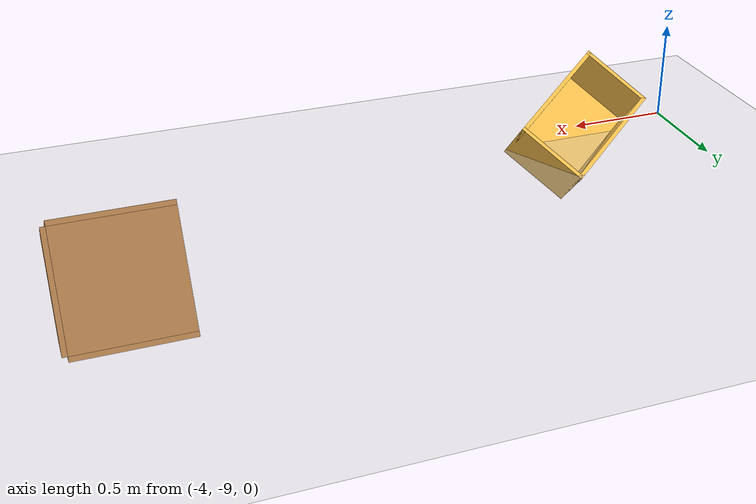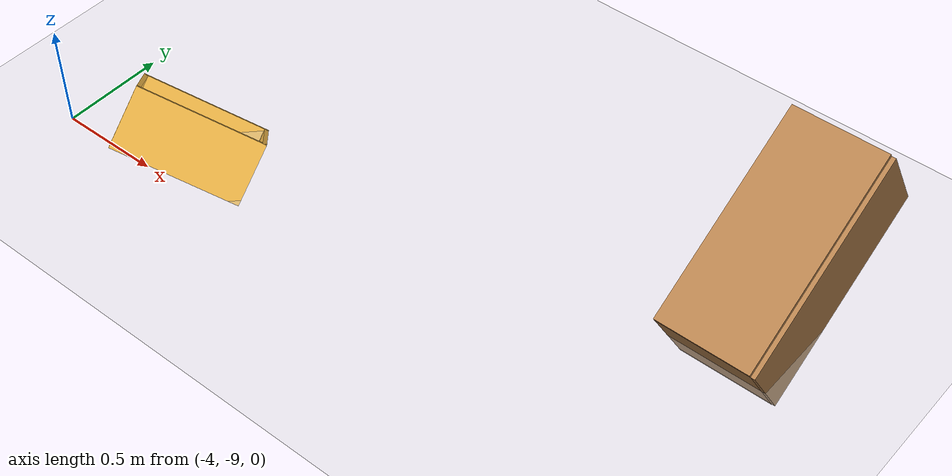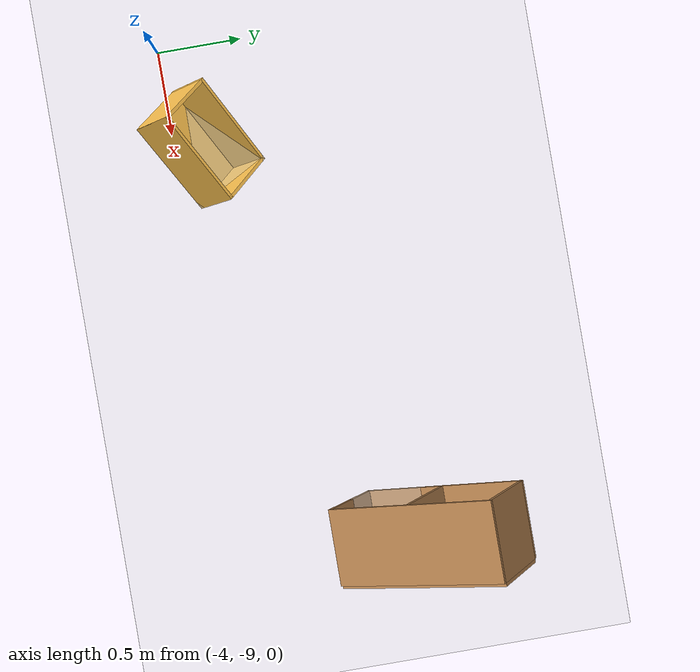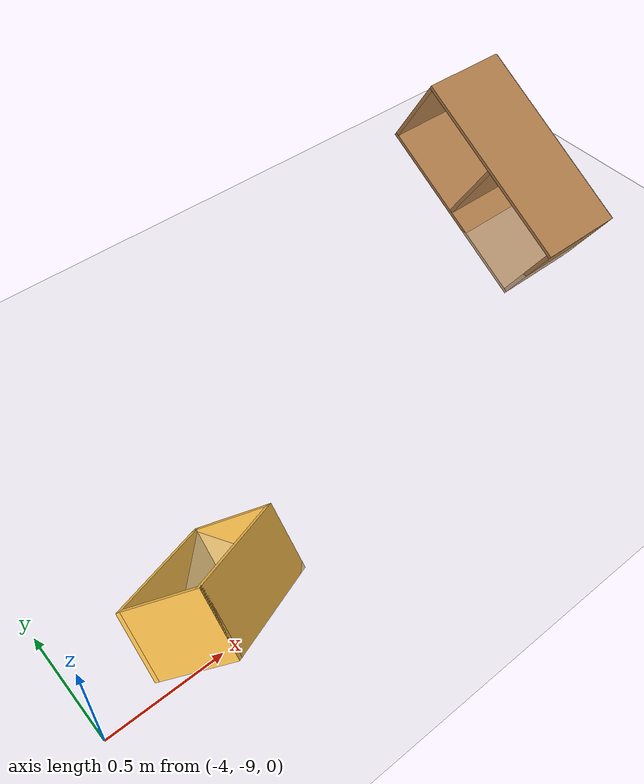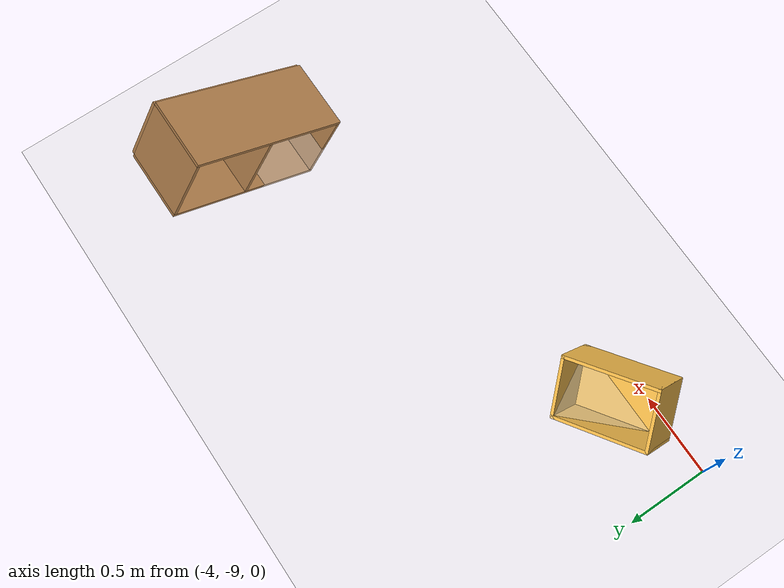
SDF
<sdf version="1.6">
 <world name="default">
  <model name="ground_plane">
   <static>1</static>
   <link name="link">
    <collision name="collision">
     <geometry><plane><normal>0 0 1</normal><size>100 100</size></plane></geometry>
     <surface><friction><ode><mu>100</mu><mu2>50</mu2></ode></friction></surface>
    </collision>
    <visual name="visual">
     <cast_shadows>0</cast_shadows>
     <geometry><plane><normal>0 0 1</normal><size>100 100</size></plane></geometry>
     <material>
      <script><uri>file://media/materials/scripts/gazebo.material</uri><name>Gazebo/Grey</name></script>
     </material>
    </visual>
   </link>
  </model>
  <model name="cabinet">
   <static>1</static>
   <link name="cabinet_bottom_plate">
    <inertial>
     <pose>0 0 -1 0 -0 0</pose>
     <inertia><ixx>2.05</ixx><ixy>0</ixy><ixz>0</ixz><iyy>2.05</iyy><iyz>0</iyz><izz>2.05</izz></inertia>
     <mass>25</mass>
    </inertial>
    <collision name="cabinet_bottom_plate_geom">
     <pose>0 0 0.01 0 -0 0</pose>
     <geometry><box><size>0.45 0.45 0.02</size></box></geometry>
    </collision>
    <visual name="cabinet_bottom_plate_geom_visual">
     <pose>0 0 0.01 0 -0 0</pose>
     <geometry><box><size>0.45 0.45 0.02</size></box></geometry>
     <material>
      <script><uri>file://media/materials/scripts/gazebo.material</uri><name>Gazebo/Wood</name></script>
     </material>
    </visual>
    <collision name="cabinet_bottom_plate_geom_cabinet_back_plate">
     <pose>0.235 0 0.51 0 -0 0</pose>
     <geometry><box><size>0.02 0.45 1.02</size></box></geometry>
    </collision>
    <visual name="cabinet_bottom_plate_geom_cabinet_back_plate_visual">
     <pose>0.235 0 0.51 0 -0 0</pose>
     <geometry><box><size>0.02 0.45 1.02</size></box></geometry>
     <material>
      <script><uri>file://media/materials/scripts/gazebo.material</uri><name>Gazebo/Wood</name></script>
     </material>
    </visual>
    <collision name="cabinet_bottom_plate_geom_cabinet_left_plate">
     <pose>0 0.235 0.51 0 -0 0</pose>
     <geometry><box><size>0.45 0.02 1.02</size></box></geometry>
    </collision>
    <visual name="cabinet_bottom_plate_geom_cabinet_left_plate_visual">
     <pose>0 0.235 0.51 0 -0 0</pose>
     <geometry><box><size>0.45 0.02 1.02</size></box></geometry>
     <material>
      <script><uri>file://media/materials/scripts/gazebo.material</uri><name>Gazebo/Wood</name></script>
     </material>
    </visual>
    <collision name="cabinet_bottom_plate_geom_cabinet_middle_plate">
     <pose>0 0 0.51 0 -0 0</pose>
     <geometry><box><size>0.45 0.45 0.02</size></box></geometry>
    </collision>
    <visual name="cabinet_bottom_plate_geom_cabinet_middle_plate_visual">
     <pose>0 0 0.51 0 -0 0</pose>
     <geometry><box><size>0.45 0.45 0.02</size></box></geometry>
     <material>
      <script><uri>file://media/materials/scripts/gazebo.material</uri><name>Gazebo/Wood</name></script>
     </material>
    </visual>
    <collision name="cabinet_bottom_plate_geom_cabinet_right_plate">
     <pose>0 -0.235 0.51 0 -0 0</pose>
     <geometry><box><size>0.45 0.02 1.02</size></box></geometry>
    </collision>
    <visual name="cabinet_bottom_plate_geom_cabinet_right_plate_visual">
     <pose>0 -0.235 0.51 0 -0 0</pose>
     <geometry><box><size>0.45 0.02 1.02</size></box></geometry>
     <material>
      <script><uri>file://media/materials/scripts/gazebo.material</uri><name>Gazebo/Wood</name></script>
     </material>
    </visual>
    <collision name="cabinet_bottom_plate_geom_cabinet_top_plate">
     <pose>0 0 1.01 0 -0 0</pose>
     <geometry><box><size>0.45 0.45 0.02</size></box></geometry>
    </collision>
    <visual name="cabinet_bottom_plate_geom_cabinet_top_plate_visual">
     <pose>0 0 1.01 0 -0 0</pose>
     <geometry><box><size>0.45 0.45 0.02</size></box></geometry>
     <material>
      <script><uri>file://media/materials/scripts/gazebo.material</uri><name>Gazebo/Wood</name></script>
     </material>
    </visual>
   </link>
   <pose>-0.945537 -8.32262 0 -1.03395 0 0</pose>
  </model>
  <model name="Wall_Cabinet_24x15M_0">
   <link name="Wall_41">
    <pose>0 0 0.01 0 -0 0</pose>
    <inertial>
     <mass>1.4983</mass>
     <inertia><ixx>0.011</ixx><iyy>0.0571</iyy><izz>0.0462</izz><ixy>0</ixy><ixz>0</ixz><iyz>0</iyz></inertia>
    </inertial>
    <collision name="Wall_41_Collision"><geometry><box><size>0.608 0.296 0.02</size></box></geometry></collision>
    <visual name="Wall_41_Visual">
     <geometry><box><size>0.608 0.296 0.02</size></box></geometry>
     <material>
      <script><uri>file://media/materials/scripts/gazebo.material</uri><name>Gazebo/Grey</name></script>
      <ambient>1 0.764706 0.305882 1</ambient>
     </material>
    </visual>
    <pose>0.000184 0.181953 0 0 -0 0</pose>
   </link>
   <joint name="41_43" type="fixed">
    <pose>-0.304 0 0 0 -0 0</pose>
    <parent>Wall_43</parent>
    <child>Wall_41</child>
    <axis>
     <xyz>0 0 1</xyz>
     <use_parent_model_frame>0</use_parent_model_frame>
     <limit><lower>-1e+16</lower><upper>1e+16</upper></limit>
    </axis>
   </joint>
   <joint name="41_45" type="fixed">
    <pose>0.304 0 0 0 -0 0</pose>
    <parent>Wall_45</parent>
    <child>Wall_41</child>
    <axis>
     <xyz>0 0 1</xyz>
     <use_parent_model_frame>0</use_parent_model_frame>
     <limit><lower>-1e+16</lower><upper>1e+16</upper></limit>
    </axis>
   </joint>
   <joint name="41_49" type="fixed">
    <pose>0 -0.148 0 0 -0 0</pose>
    <parent>Wall_49</parent>
    <child>Wall_41</child>
    <axis>
     <xyz>0 0 1</xyz>
     <use_parent_model_frame>0</use_parent_model_frame>
     <limit><lower>-1e+16</lower><upper>1e+16</upper></limit>
    </axis>
   </joint>
   <link name="Wall_43">
    <pose>-0.294 0 0.192 0 -0 0</pose>
    <inertial>
     <mass>0.9463</mass>
     <inertia><ixx>0.0069</ixx><iyy>0.0185</iyy><izz>0.0117</izz><ixy>0</ixy><ixz>0</ixz><iyz>0</iyz></inertia>
    </inertial>
    <collision name="Wall_43_Collision"><geometry><box><size>0.02 0.296 0.384</size></box></geometry></collision>
    <visual name="Wall_43_Visual">
     <geometry><box><size>0.02 0.296 0.384</size></box></geometry>
     <material>
      <script><uri>file://media/materials/scripts/gazebo.material</uri><name>Gazebo/Grey</name></script>
      <ambient>1 0.764706 0.305882 1</ambient>
     </material>
    </visual>
   </link>
   <link name="Wall_45">
    <pose>0.294 0 0.192 0 -0 0</pose>
    <inertial>
     <mass>0.9463</mass>
     <inertia><ixx>0.0069</ixx><iyy>0.0185</iyy><izz>0.0117</izz><ixy>0</ixy><ixz>0</ixz><iyz>0</iyz></inertia>
    </inertial>
    <collision name="Wall_45_Collision"><geometry><box><size>0.02 0.296 0.384</size></box></geometry></collision>
    <visual name="Wall_45_Visual">
     <geometry><box><size>0.02 0.296 0.384</size></box></geometry>
     <material>
      <script><uri>file://media/materials/scripts/gazebo.material</uri><name>Gazebo/Grey</name></script>
      <ambient>1 0.764706 0.305882 1</ambient>
     </material>
    </visual>
   </link>
   <link name="Wall_47">
    <pose>0 0 0.374 0 -0 0</pose>
    <inertial>
     <mass>1.4983</mass>
     <inertia><ixx>0.011</ixx><iyy>0.0571</iyy><izz>0.0462</izz><ixy>0</ixy><ixz>0</ixz><iyz>0</iyz></inertia>
    </inertial>
    <collision name="Wall_47_Collision"><geometry><box><size>0.608 0.296 0.02</size></box></geometry></collision>
    <visual name="Wall_47_Visual">
     <geometry><box><size>0.608 0.296 0.02</size></box></geometry>
     <material>
      <script><uri>file://media/materials/scripts/gazebo.material</uri><name>Gazebo/Grey</name></script>
      <ambient>1 0.764706 0.305882 1</ambient>
     </material>
    </visual>
   </link>
   <joint name="47_43" type="fixed">
    <pose>-0.304 0 0 0 -0 0</pose>
    <parent>Wall_43</parent>
    <child>Wall_47</child>
    <axis>
     <xyz>0 0 1</xyz>
     <use_parent_model_frame>0</use_parent_model_frame>
     <limit><lower>-1e+16</lower><upper>1e+16</upper></limit>
    </axis>
   </joint>
   <joint name="47_45" type="fixed">
    <pose>0.304 0 0 0 -0 0</pose>
    <parent>Wall_45</parent>
    <child>Wall_47</child>
    <axis>
     <xyz>0 0 1</xyz>
     <use_parent_model_frame>0</use_parent_model_frame>
     <limit><lower>-1e+16</lower><upper>1e+16</upper></limit>
    </axis>
   </joint>
   <joint name="47_49" type="fixed">
    <pose>0 -0.148 0 0 -0 0</pose>
    <parent>Wall_49</parent>
    <child>Wall_47</child>
    <axis>
     <xyz>0 0 1</xyz>
     <use_parent_model_frame>0</use_parent_model_frame>
     <limit><lower>-1e+16</lower><upper>1e+16</upper></limit>
    </axis>
   </joint>
   <link name="Wall_49">
    <pose>0 -0.138 0.19 0 -0 0</pose>
    <inertial>
     <mass>1.9108</mass>
     <inertia><ixx>0.0231</ixx><iyy>0.0582</iyy><izz>0.0811</izz><ixy>0</ixy><ixz>0</ixz><iyz>0</iyz></inertia>
    </inertial>
    <collision name="Wall_49_Collision"><geometry><box><size>0.604 0.02 0.38</size></box></geometry></collision>
    <visual name="Wall_49_Visual">
     <geometry><box><size>0.604 0.02 0.38</size></box></geometry>
     <material>
      <script><uri>file://media/materials/scripts/gazebo.material</uri><name>Gazebo/Grey</name></script>
      <ambient>1 0.764706 0.305882 1</ambient>
     </material>
    </visual>
   </link>
   <joint name="49_43" type="fixed">
    <pose>-0.302 0 0 0 -0 0</pose>
    <parent>Wall_41</parent>
    <child>Wall_49</child>
    <axis>
     <xyz>0 1 0</xyz>
     <use_parent_model_frame>0</use_parent_model_frame>
     <limit><lower>-1e+16</lower><upper>1e+16</upper></limit>
    </axis>
   </joint>
   <joint name="49_45" type="fixed">
    <pose>0.302 0 0 0 -0 0</pose>
    <parent>Wall_45</parent>
    <child>Wall_49</child>
    <axis>
     <xyz>0 1 0</xyz>
     <use_parent_model_frame>0</use_parent_model_frame>
     <limit><lower>-1e+16</lower><upper>1e+16</upper></limit>
    </axis>
   </joint>
   <static>1</static>
   <pose>-3.51303 -8.70948 0 0.929942 0.424853 0.504855</pose>
  </model>
 </world>
</sdf>
